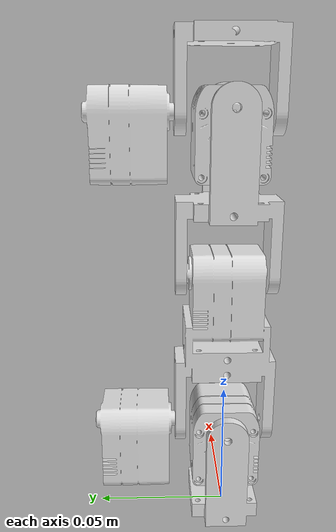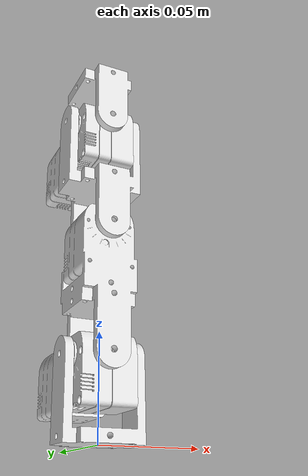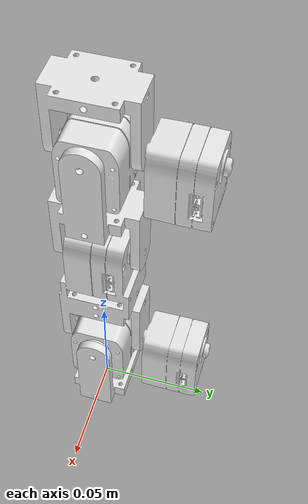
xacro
<?xml version="1.0"?>
<robot name="walker" xmlns:xacro="http://www.ros.org/wiki/xacro">
  <!-- This urdf (the urdf generated from this xacro, to be precise) of just the left leg is fed into ikpy. -->
  <xacro:property name="PI" value="3.141592"/>

  <xacro:macro name="create_joint" params="name parent child x:=0 y:=0 z:=0 axis angle_min:=-30 angle_max:=30">
    <joint name="${name}" type="revolute">
      <parent link="${parent}" />
      <child link="${child}"/>
      <origin xyz="${x/1000} ${y/1000} ${z/1000}" rpy="0 0 0"/>
      <axis xyz="${axis}"/>
      <limit
        effort="40.0" velocity="1.0"
        lower="${angle_min*PI/180}"
        upper="${angle_max*PI/180}"/>
    </joint>
  </xacro:macro>

  <xacro:macro name="create_fixed_joint" params="name parent child x:=0 y:=0 z:=0">
    <joint name="${name}" type="fixed">
      <parent link="${parent}" />
      <child link="${child}"/>
      <origin xyz="${x/1000} ${y/1000} ${z/1000}" rpy="0 0 0"/>
    </joint>
  </xacro:macro>

  <xacro:macro name="create_mesh" params="name x:=0 y:=0 z:=0 yaw:=0">
    <!-- the offsets are used when "re-using" the left leg meshes for the right leg. It's somewhat confusing. -->
    <visual>
      <geometry>
        <mesh scale="0.001 0.001 0.001" filename="package://walker_description/meshes/${name}.stl"/>
      </geometry>
      <material name="gray"/>
      <origin xyz="${x/1000} ${y/1000} ${z/1000}" rpy="0 0 ${yaw*PI/180}"/>
    </visual>
  </xacro:macro>
  <material name="gray">
   <color rgba="0.90 0.90 0.90 1.00"/>
  </material>

  <!-- center of the left foot's sole. -->

<!-- LEFT LEG -->

  <link name="lA">
    <xacro:create_mesh name="lA"/>
  </link>

  <xacro:create_joint name="l_ankle_roll" parent="lA" child="lB" x="19" z="38" axis="1 0 0" angle_min="-23" angle_max="23"/>

  <link name="lB">
    <xacro:create_mesh name="lB"/>
  </link>

  <xacro:create_joint name="l_ankle_pitch" parent="lB" child="lC" x="-19.72" y="19.54" axis="0 1 0" angle_min="-60" angle_max="60"/>

  <link name="lC">
    <xacro:create_mesh name="lC"/>
  </link>

  <xacro:create_joint name="l_knee" parent="lC" child="lD" z="61" axis="0 1 0" angle_min="-90" angle_max="0"/>

  <link name="lD">
    <xacro:create_mesh name="lD"/>
  </link>

  <xacro:create_joint name="l_hip_roll" parent="lD" child="lE" x="19" y="-19" z="58" axis="1 0 0" angle_min="-23" angle_max="23"/>

  <link name="lE">
    <xacro:create_mesh name="lB"/>
    <!-- lB and lE are the same -->
  </link>

  <link name="lF">
    <xacro:create_mesh name="lF"/>
  </link>

  <xacro:create_joint name="l_hip_pitch" parent="lE" child="lF" x="-19.72" y="19.54" axis="0 1 0" angle_min="-60" angle_max="60"/>

</robot>
